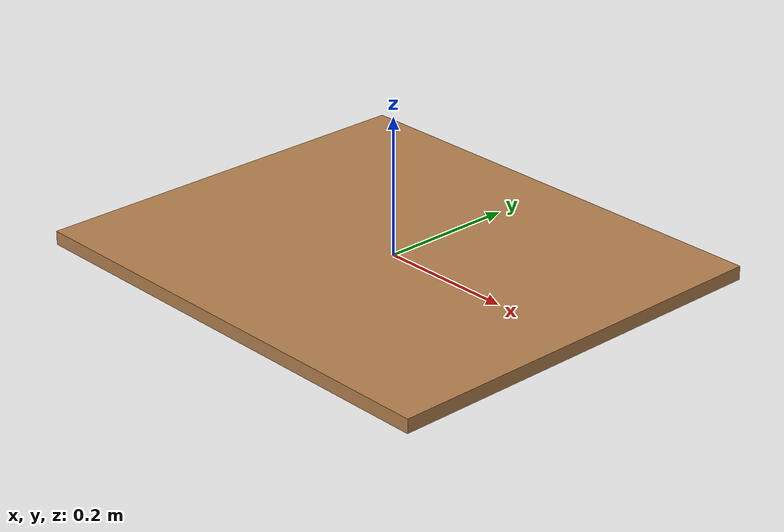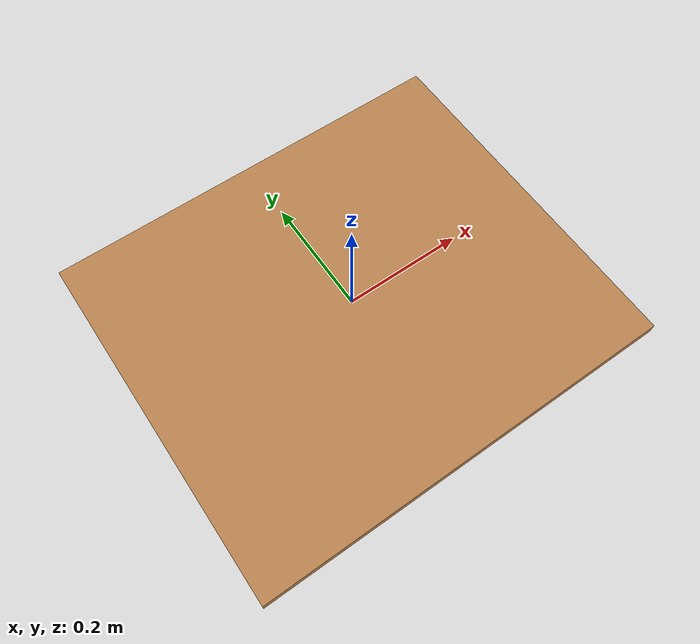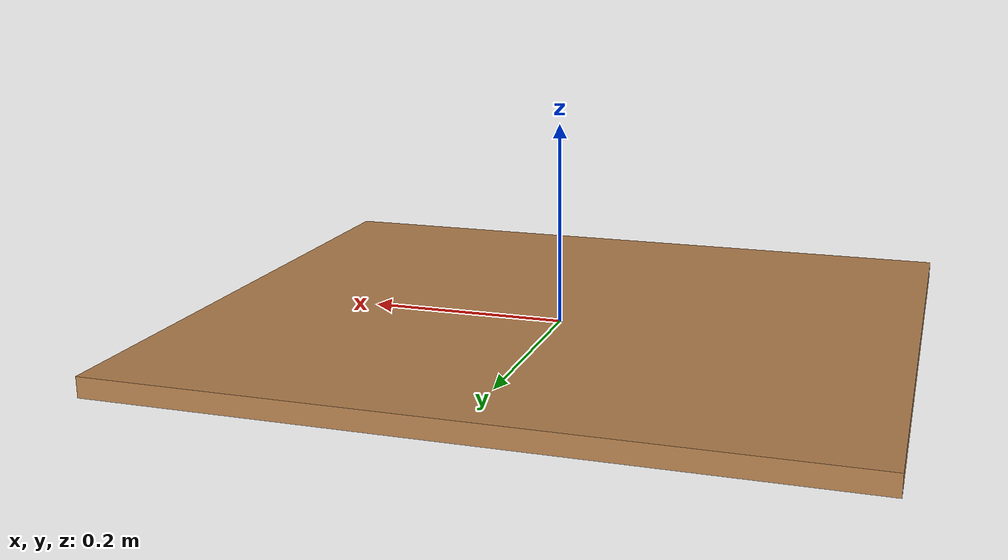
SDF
<?xml version='1.0'?>
  <sdf version='1.6'>
    <model name="Plane1">
      <static>true</static>
        <link name='body'>
          <pose>0 0 0 0 0 0</pose>

          <collision name='collision'>

            <geometry>
              <box>
                <size>.7 .6 0.02</size>
              </box>
            </geometry>

          </collision>

          <visual name='visual'>

            <geometry>
              <box>
                <size>.7 .6 0.02</size>
              </box>
            </geometry>

            <material>
              <script>
        	<uri>file://media/materials/scripts/gazebo.material</uri>
        	<name>Gazebo/WoodFloor</name>
      	      </script>
            </material>

          </visual>
        </link>
    </model>
  </sdf>
